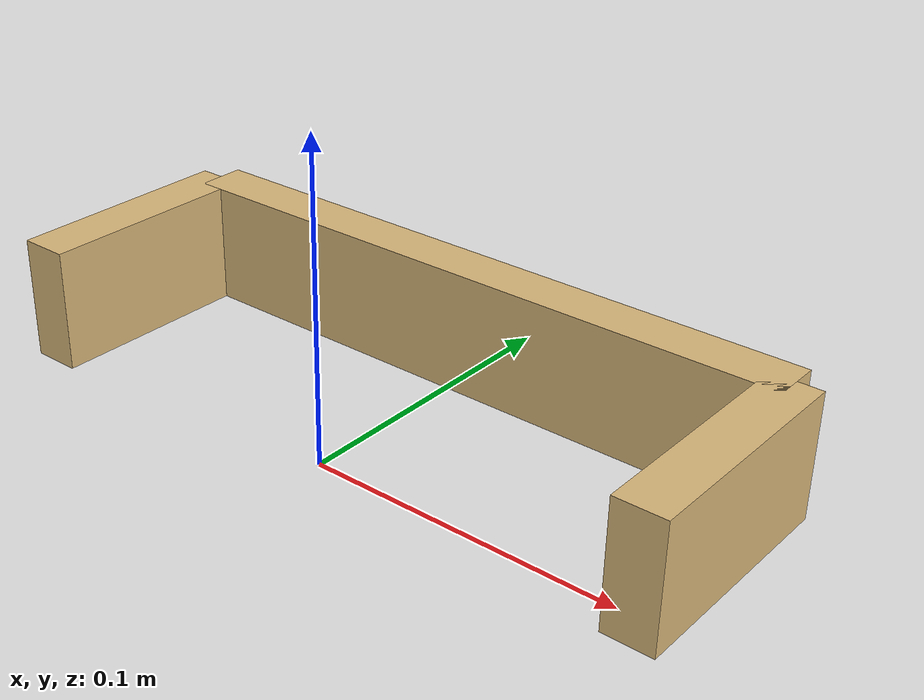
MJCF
<mujoco model="dustpan">
  <worldbody>
    <body>
      <body name="object">
        <!-- Shallow open tray / dustpan corral.  No floor — table surface is the floor. -->
        <!-- Origin at front entry edge, tray center (z=0 = table surface when joint z=0.900). -->
        <!-- Opening faces local -y direction; tray interior extends in +y direction. -->
        <!-- Interior: x in [-0.100, 0.100], y in [0.000, 0.060], z in [0.000, 0.038]. -->
        <!-- All wall geoms start at local z=-0.002 so they embed 2mm into the table. -->

        <!-- contain_region site: invisible box covering tray interior for BDDL checking. -->
        <site type="box" pos="0 0.030 0.018" quat="1 0 0 0"
              size="0.090 0.030 0.018" rgba="0.0 0.8 0.1 0.0"
              name="contain_region" group="0" />

        <!-- Back wall (+y edge, stopping the block). -->
        <geom type="box" size="0.108 0.008 0.020" pos="0 0.068 0.018"
              rgba="0.85 0.72 0.48 1" group="1" contype="0" conaffinity="0" />
        <geom type="box" size="0.108 0.008 0.020" pos="0 0.068 0.018"
              rgba="0.85 0.72 0.48 1" group="0"
              density="5000" friction="4.0 1.0 0.1"
              solimp="0.999 0.999 0.0001" solref="0.001 1" />

        <!-- Left side wall (-x). -->
        <geom type="box" size="0.008 0.038 0.020" pos="-0.108 0.030 0.018"
              rgba="0.85 0.72 0.48 1" group="1" contype="0" conaffinity="0" />
        <geom type="box" size="0.008 0.038 0.020" pos="-0.108 0.030 0.018"
              rgba="0.85 0.72 0.48 1" group="0"
              density="5000" friction="4.0 1.0 0.1"
              solimp="0.999 0.999 0.0001" solref="0.001 1" />

        <!-- Right side wall (+x). -->
        <geom type="box" size="0.008 0.038 0.020" pos="0.108 0.030 0.018"
              rgba="0.85 0.72 0.48 1" group="1" contype="0" conaffinity="0" />
        <geom type="box" size="0.008 0.038 0.020" pos="0.108 0.030 0.018"
              rgba="0.85 0.72 0.48 1" group="0"
              density="5000" friction="4.0 1.0 0.1"
              solimp="0.999 0.999 0.0001" solref="0.001 1" />
      </body>
      <site rgba="0 0 0 0" size="0.005" pos="0 0 0.000" name="bottom_site" group="0" />
      <site rgba="0 0 0 0" size="0.005" pos="0 0 0.038" name="top_site" group="0" />
      <site rgba="0 0 0 0" size="0.108" pos="0.108 0.068 0.018" name="horizontal_radius_site" group="0" />
    </body>
  </worldbody>
</mujoco>
